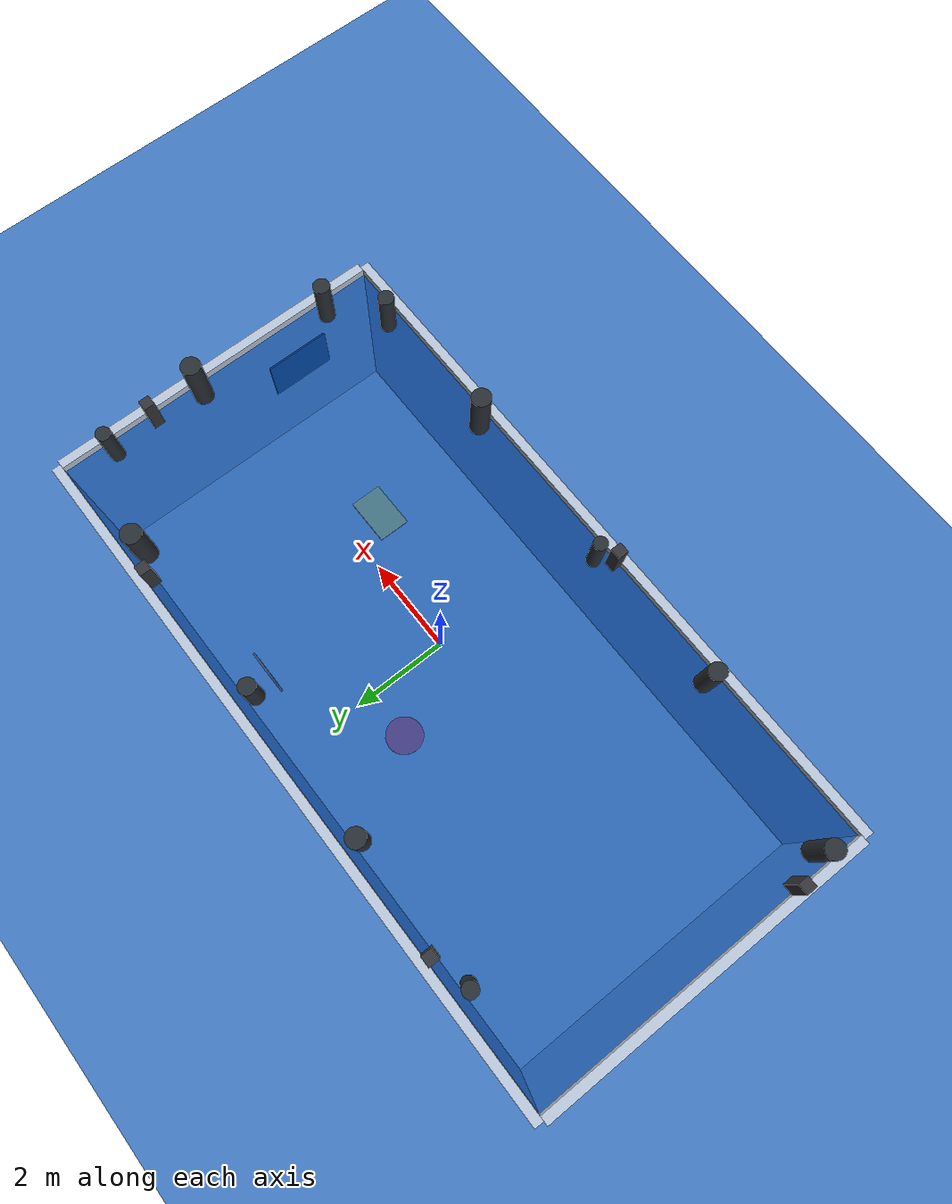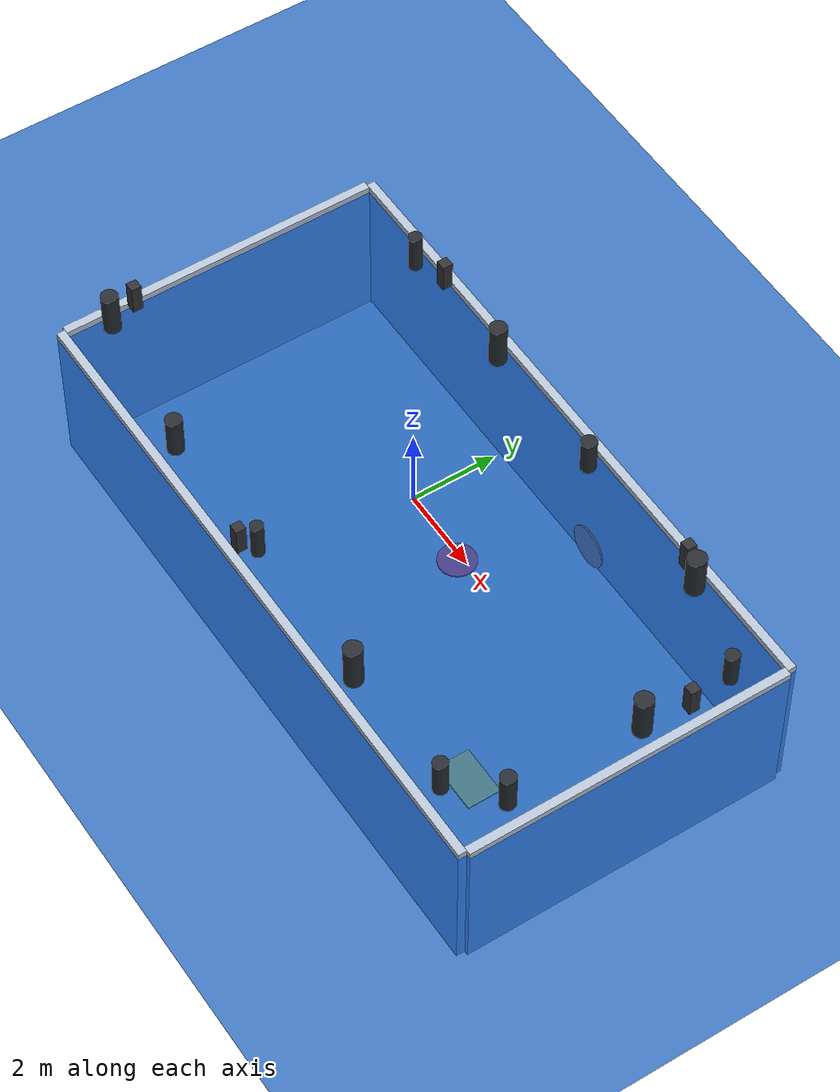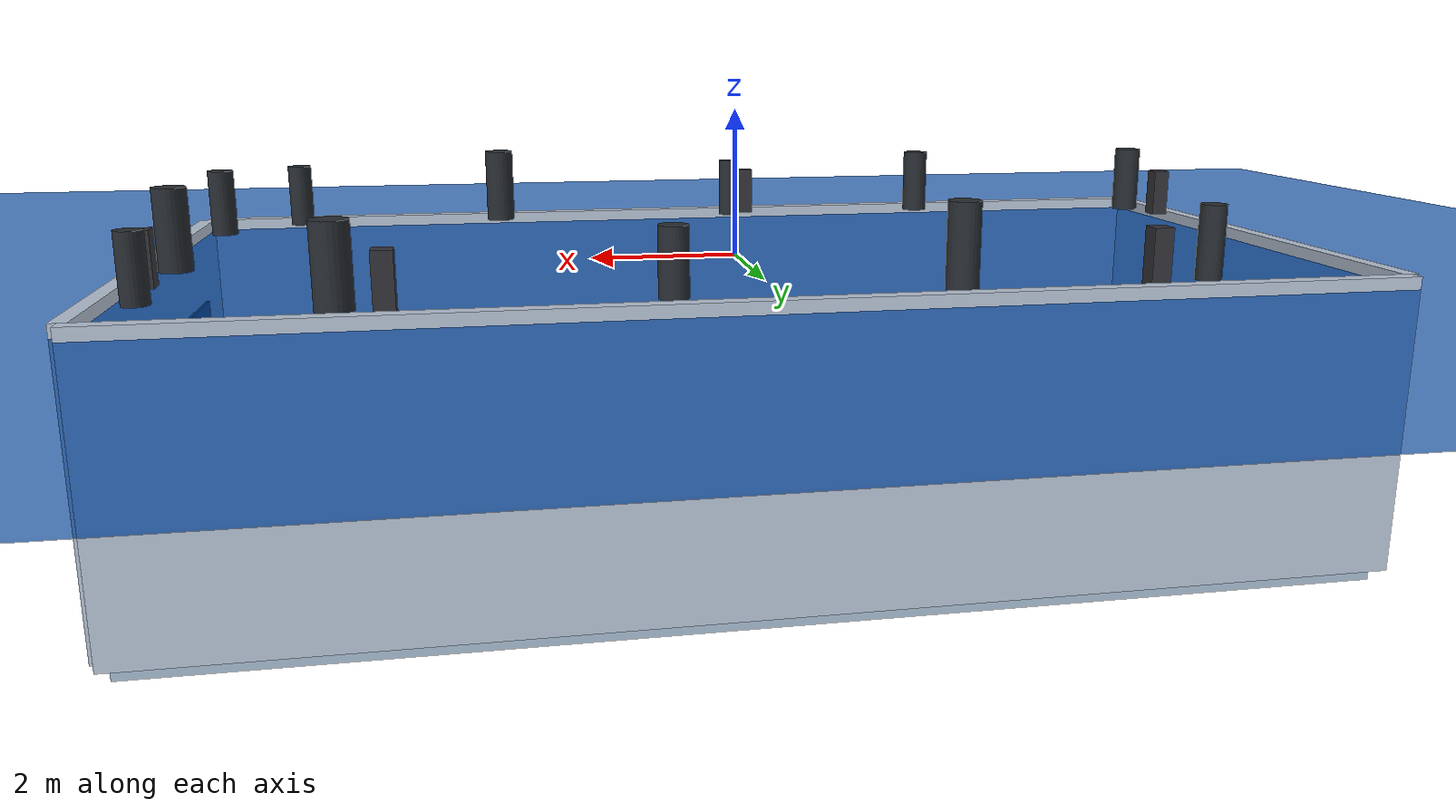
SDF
<?xml version="1.0" ?>
<sdf version="1.10">
  <world name="tank">
    <plugin filename="gz-sim-physics-system" name="gz::sim::systems::Physics"/>
    <plugin filename="gz-sim-user-commands-system" name="gz::sim::systems::UserCommands"/>
    <plugin filename="gz-sim-scene-broadcaster-system" name="gz::sim::systems::SceneBroadcaster"/>
    <plugin filename="gz-sim-sensors-system" name="gz::sim::systems::Sensors">
      <render_engine>ogre2</render_engine>
    </plugin>
    <plugin filename="gz-sim-imu-system" name="gz::sim::systems::Imu"/>
    <plugin filename="gz-sim-navsat-system" name="gz::sim::systems::NavSat"/>
    <plugin filename="gz-sim-magnetometer-system" name="gz::sim::systems::Magnetometer"/>

    <physics type="ignored">
      <max_step_size>0.004</max_step_size>
      <real_time_factor>1.0</real_time_factor>
      <real_time_update_rate>250</real_time_update_rate>
    </physics>

    <scene>
      <ambient>0.01 0.01 0.01 1.0</ambient>
      <background>0.70 0.84 0.95 1.0</background>
      <grid>false</grid>
      <sky>
        <clouds>
          <speed>12</speed>
        </clouds>
      </sky>
      <shadows>1</shadows>
    </scene>

    <!-- Global lights copied from open_water.world for consistent sim visibility. -->
    <light type="directional" name="sun1">
      <pose>50 0 150 0 0 0</pose>
      <diffuse>1 1 1 1</diffuse>
      <specular>.1 .1 .1 1</specular>
      <direction>0.3 0.3 -1</direction>
      <cast_shadows>false</cast_shadows>
    </light>

    <light type="directional" name="sun_diffuse">
      <pose>-50 0 -150 0 0 0</pose>
      <diffuse>0.6 0.6 0.6 1</diffuse>
      <specular>0 0 0 1</specular>
      <direction>-0.3 -0.3 -1</direction>
      <cast_shadows>false</cast_shadows>
    </light>

    <!-- Extra local fill light to keep the empty tank interior readable. -->
    <light type="point" name="tank_overhead_fill">
      <pose>0 0 8 0 0 0</pose>
      <diffuse>0.85 0.9 1.0 1</diffuse>
      <specular>0.15 0.15 0.15 1</specular>
      <attenuation>
        <range>30</range>
        <constant>0.6</constant>
        <linear>0.02</linear>
        <quadratic>0.002</quadratic>
      </attenuation>
      <cast_shadows>false</cast_shadows>
    </light>

    <include>
      <uri>model://tank</uri>
      <pose>-6.42 0 0 0 0 0</pose>
    </include>

    <!-- Generic visual water surface. Scenario semantics stay outside Gazebo model names. -->
    <include>
      <uri>model://water_surface</uri>
      <pose>0.0 0.0 0.0 0 0 0</pose>
    </include>

    <!-- Registration geometry is separate from inspection targets so each
         model has one simulator responsibility. -->
    <include>
      <uri>model://pool_registration_landmarks</uri>
      <pose>-6.42 0 0 0 0 0</pose>
    </include>

    <include>
      <uri>model://pool_inspection_targets</uri>
      <pose>-6.42 0 0 0 0 0</pose>
    </include>

  </world>
</sdf>

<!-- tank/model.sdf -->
<sdf version="1.6">
  <model name="tank">
    <static>true</static>
    <link name="tank_floor_link">
      <pose>6.42 0.0 -3.76 0 0 0</pose>
      <collision name="floor_collision">
        <geometry>
          <box>
            <size>15.24 7.62 0.2</size>
          </box>
        </geometry>
      </collision>
      <visual name="floor_visual">
        <geometry>
          <box>
            <size>15.24 7.62 0.2</size>
          </box>
        </geometry>
        <material>
          <ambient>0.58 0.66 0.74 1</ambient>
          <diffuse>0.66 0.74 0.82 1</diffuse>
        </material>
      </visual>
    </link>
    <link name="tank_wall_north_link">
      <pose>6.42 3.91 -1.755 0 0 0</pose>
      <collision name="wall_collision">
        <geometry>
          <box>
            <size>15.44 0.20 3.81</size>
          </box>
        </geometry>
      </collision>
      <visual name="wall_visual">
        <geometry>
          <box>
            <size>15.44 0.20 3.81</size>
          </box>
        </geometry>
        <material>
          <ambient>0.62 0.67 0.74 1</ambient>
          <diffuse>0.72 0.77 0.84 1</diffuse>
        </material>
      </visual>
    </link>
    <link name="tank_wall_south_link">
      <pose>6.42 -3.91 -1.755 0 0 0</pose>
      <collision name="wall_collision">
        <geometry>
          <box>
            <size>15.44 0.20 3.81</size>
          </box>
        </geometry>
      </collision>
      <visual name="wall_visual">
        <geometry>
          <box>
            <size>15.44 0.20 3.81</size>
          </box>
        </geometry>
        <material>
          <ambient>0.62 0.67 0.74 1</ambient>
          <diffuse>0.72 0.77 0.84 1</diffuse>
        </material>
      </visual>
    </link>
    <link name="tank_wall_east_link">
      <pose>14.14 0.0 -1.755 0 0 0</pose>
      <collision name="wall_collision">
        <geometry>
          <box>
            <size>0.20 7.62 3.81</size>
          </box>
        </geometry>
      </collision>
      <visual name="wall_visual">
        <geometry>
          <box>
            <size>0.20 7.62 3.81</size>
          </box>
        </geometry>
        <material>
          <ambient>0.62 0.67 0.74 1</ambient>
          <diffuse>0.72 0.77 0.84 1</diffuse>
        </material>
      </visual>
    </link>
    <link name="tank_wall_west_link">
      <pose>-1.30 0.0 -1.755 0 0 0</pose>
      <collision name="wall_collision">
        <geometry>
          <box>
            <size>0.20 7.62 3.81</size>
          </box>
        </geometry>
      </collision>
      <visual name="wall_visual">
        <geometry>
          <box>
            <size>0.20 7.62 3.81</size>
          </box>
        </geometry>
        <material>
          <ambient>0.62 0.67 0.74 1</ambient>
          <diffuse>0.72 0.77 0.84 1</diffuse>
        </material>
      </visual>
    </link>
  </model>
</sdf>

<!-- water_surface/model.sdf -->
<sdf version="1.6">
  <model name="water_surface">
    <static>true</static>

    <link name="water_surface_link">
      <visual name="water_surface_visual">
        <pose>0 0 -0.02 0 0 0</pose>
        <geometry>
          <box>
            <size>2000 2000 0.02</size>
          </box>
        </geometry>
        <material>
          <ambient>0.0 0.3 0.7 1.0</ambient>
          <diffuse>0.0 0.3 0.7 0.7</diffuse>
          <specular>0.1 0.1 0.1 1.0</specular>
        </material>
        <transparency>0.25</transparency>
      </visual>
    </link>
  </model>
</sdf>

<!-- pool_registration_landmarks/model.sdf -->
<sdf version="1.6">
  <model name="pool_registration_landmarks">
    <static>true</static>
    <link name="tank_lidar_reference_post_a_link">
      <pose>2.00 3.68 0.45 0 0 0</pose>
      <collision name="post_collision">
        <geometry>
          <box>
            <size>0.24 0.24 0.70</size>
          </box>
        </geometry>
      </collision>
      <visual name="post_visual">
        <geometry>
          <box>
            <size>0.24 0.24 0.70</size>
          </box>
        </geometry>
        <material>
          <ambient>0.18 0.18 0.20 1</ambient>
          <diffuse>0.20 0.20 0.22 1</diffuse>
        </material>
      </visual>
    </link>
    <link name="tank_lidar_reference_post_b_link">
      <pose>5.60 -3.68 0.45 0 0 0</pose>
      <collision name="post_collision">
        <geometry>
          <box>
            <size>0.24 0.24 0.70</size>
          </box>
        </geometry>
      </collision>
      <visual name="post_visual">
        <geometry>
          <box>
            <size>0.24 0.24 0.70</size>
          </box>
        </geometry>
        <material>
          <ambient>0.18 0.18 0.20 1</ambient>
          <diffuse>0.20 0.20 0.22 1</diffuse>
        </material>
      </visual>
    </link>
    <link name="tank_lidar_reference_post_c_link">
      <pose>10.90 3.68 0.45 0 0 0</pose>
      <collision name="post_collision">
        <geometry>
          <box>
            <size>0.24 0.24 0.70</size>
          </box>
        </geometry>
      </collision>
      <visual name="post_visual">
        <geometry>
          <box>
            <size>0.24 0.24 0.70</size>
          </box>
        </geometry>
        <material>
          <ambient>0.18 0.18 0.20 1</ambient>
          <diffuse>0.20 0.20 0.22 1</diffuse>
        </material>
      </visual>
    </link>
    <link name="tank_lidar_reference_post_d_link">
      <pose>13.78 1.70 0.45 0 0 0</pose>
      <collision name="post_collision">
        <geometry>
          <box>
            <size>0.24 0.24 0.70</size>
          </box>
        </geometry>
      </collision>
      <visual name="post_visual">
        <geometry>
          <box>
            <size>0.24 0.24 0.70</size>
          </box>
        </geometry>
        <material>
          <ambient>0.18 0.18 0.20 1</ambient>
          <diffuse>0.20 0.20 0.22 1</diffuse>
        </material>
      </visual>
    </link>
    <link name="tank_lidar_reference_post_e_link">
      <pose>-1.08 -2.20 0.45 0 0 0</pose>
      <collision name="post_collision">
        <geometry>
          <box>
            <size>0.24 0.24 0.70</size>
          </box>
        </geometry>
      </collision>
      <visual name="post_visual">
        <geometry>
          <box>
            <size>0.24 0.24 0.70</size>
          </box>
        </geometry>
        <material>
          <ambient>0.18 0.18 0.20 1</ambient>
          <diffuse>0.20 0.20 0.22 1</diffuse>
        </material>
      </visual>
    </link>
    <link name="tank_lidar_registration_landmarks_link">
      <collision name="north_pylon_1_collision">
        <pose>1.20 3.45 0.56 0 0 0</pose>
        <geometry>
          <cylinder>
            <radius>0.16</radius>
            <length>0.92</length>
          </cylinder>
        </geometry>
      </collision>
      <visual name="north_pylon_1_visual">
        <pose>1.20 3.45 0.56 0 0 0</pose>
        <geometry>
          <cylinder>
            <radius>0.16</radius>
            <length>0.92</length>
          </cylinder>
        </geometry>
        <material>
          <ambient>0.12 0.14 0.16 1</ambient>
          <diffuse>0.16 0.18 0.20 1</diffuse>
        </material>
      </visual>
      <collision name="north_pylon_2_collision">
        <pose>4.35 3.47 0.62 0 0 0</pose>
        <geometry>
          <cylinder>
            <radius>0.20</radius>
            <length>1.04</length>
          </cylinder>
        </geometry>
      </collision>
      <visual name="north_pylon_2_visual">
        <pose>4.35 3.47 0.62 0 0 0</pose>
        <geometry>
          <cylinder>
            <radius>0.20</radius>
            <length>1.04</length>
          </cylinder>
        </geometry>
        <material>
          <ambient>0.12 0.14 0.16 1</ambient>
          <diffuse>0.16 0.18 0.20 1</diffuse>
        </material>
      </visual>
      <collision name="north_pylon_3_collision">
        <pose>7.75 3.43 0.52 0 0 0</pose>
        <geometry>
          <cylinder>
            <radius>0.18</radius>
            <length>0.84</length>
          </cylinder>
        </geometry>
      </collision>
      <visual name="north_pylon_3_visual">
        <pose>7.75 3.43 0.52 0 0 0</pose>
        <geometry>
          <cylinder>
            <radius>0.18</radius>
            <length>0.84</length>
          </cylinder>
        </geometry>
        <material>
          <ambient>0.12 0.14 0.16 1</ambient>
          <diffuse>0.16 0.18 0.20 1</diffuse>
        </material>
      </visual>
      <collision name="north_pylon_4_collision">
        <pose>11.45 3.46 0.60 0 0 0</pose>
        <geometry>
          <cylinder>
            <radius>0.22</radius>
            <length>1.00</length>
          </cylinder>
        </geometry>
      </collision>
      <visual name="north_pylon_4_visual">
        <pose>11.45 3.46 0.60 0 0 0</pose>
        <geometry>
          <cylinder>
            <radius>0.22</radius>
            <length>1.00</length>
          </cylinder>
        </geometry>
        <material>
          <ambient>0.12 0.14 0.16 1</ambient>
          <diffuse>0.16 0.18 0.20 1</diffuse>
        </material>
      </visual>
      <collision name="south_pylon_1_collision">
        <pose>2.70 -3.45 0.58 0 0 0</pose>
        <geometry>
          <cylinder>
            <radius>0.19</radius>
            <length>0.96</length>
          </cylinder>
        </geometry>
      </collision>
      <visual name="south_pylon_1_visual">
        <pose>2.70 -3.45 0.58 0 0 0</pose>
        <geometry>
          <cylinder>
            <radius>0.19</radius>
            <length>0.96</length>
          </cylinder>
        </geometry>
        <material>
          <ambient>0.12 0.14 0.16 1</ambient>
          <diffuse>0.16 0.18 0.20 1</diffuse>
        </material>
      </visual>
      <collision name="south_pylon_2_collision">
        <pose>5.90 -3.42 0.54 0 0 0</pose>
        <geometry>
          <cylinder>
            <radius>0.15</radius>
            <length>0.88</length>
          </cylinder>
        </geometry>
      </collision>
      <visual name="south_pylon_2_visual">
        <pose>5.90 -3.42 0.54 0 0 0</pose>
        <geometry>
          <cylinder>
            <radius>0.15</radius>
            <length>0.88</length>
          </cylinder>
        </geometry>
        <material>
          <ambient>0.12 0.14 0.16 1</ambient>
          <diffuse>0.16 0.18 0.20 1</diffuse>
        </material>
      </visual>
      <collision name="south_pylon_3_collision">
        <pose>9.60 -3.48 0.64 0 0 0</pose>
        <geometry>
          <cylinder>
            <radius>0.21</radius>
            <length>1.08</length>
          </cylinder>
        </geometry>
      </collision>
      <visual name="south_pylon_3_visual">
        <pose>9.60 -3.48 0.64 0 0 0</pose>
        <geometry>
          <cylinder>
            <radius>0.21</radius>
            <length>1.08</length>
          </cylinder>
        </geometry>
        <material>
          <ambient>0.12 0.14 0.16 1</ambient>
          <diffuse>0.16 0.18 0.20 1</diffuse>
        </material>
      </visual>
      <collision name="south_pylon_4_collision">
        <pose>12.65 -3.44 0.55 0 0 0</pose>
        <geometry>
          <cylinder>
            <radius>0.17</radius>
            <length>0.90</length>
          </cylinder>
        </geometry>
      </collision>
      <visual name="south_pylon_4_visual">
        <pose>12.65 -3.44 0.55 0 0 0</pose>
        <geometry>
          <cylinder>
            <radius>0.17</radius>
            <length>0.90</length>
          </cylinder>
        </geometry>
        <material>
          <ambient>0.12 0.14 0.16 1</ambient>
          <diffuse>0.16 0.18 0.20 1</diffuse>
        </material>
      </visual>
      <collision name="east_pylon_1_collision">
        <pose>13.65 -2.55 0.57 0 0 0</pose>
        <geometry>
          <cylinder>
            <radius>0.18</radius>
            <length>0.94</length>
          </cylinder>
        </geometry>
      </collision>
      <visual name="east_pylon_1_visual">
        <pose>13.65 -2.55 0.57 0 0 0</pose>
        <geometry>
          <cylinder>
            <radius>0.18</radius>
            <length>0.94</length>
          </cylinder>
        </geometry>
        <material>
          <ambient>0.12 0.14 0.16 1</ambient>
          <diffuse>0.16 0.18 0.20 1</diffuse>
        </material>
      </visual>
      <collision name="east_pylon_2_collision">
        <pose>13.67 0.60 0.63 0 0 0</pose>
        <geometry>
          <cylinder>
            <radius>0.21</radius>
            <length>1.06</length>
          </cylinder>
        </geometry>
      </collision>
      <visual name="east_pylon_2_visual">
        <pose>13.67 0.60 0.63 0 0 0</pose>
        <geometry>
          <cylinder>
            <radius>0.21</radius>
            <length>1.06</length>
          </cylinder>
        </geometry>
        <material>
          <ambient>0.12 0.14 0.16 1</ambient>
          <diffuse>0.16 0.18 0.20 1</diffuse>
        </material>
      </visual>
      <collision name="east_pylon_3_collision">
        <pose>13.64 2.75 0.52 0 0 0</pose>
        <geometry>
          <cylinder>
            <radius>0.16</radius>
            <length>0.84</length>
          </cylinder>
        </geometry>
      </collision>
      <visual name="east_pylon_3_visual">
        <pose>13.64 2.75 0.52 0 0 0</pose>
        <geometry>
          <cylinder>
            <radius>0.16</radius>
            <length>0.84</length>
          </cylinder>
        </geometry>
        <material>
          <ambient>0.12 0.14 0.16 1</ambient>
          <diffuse>0.16 0.18 0.20 1</diffuse>
        </material>
      </visual>
      <collision name="west_pylon_1_collision">
        <pose>-0.86 -2.90 0.60 0 0 0</pose>
        <geometry>
          <cylinder>
            <radius>0.20</radius>
            <length>1.00</length>
          </cylinder>
        </geometry>
      </collision>
      <visual name="west_pylon_1_visual">
        <pose>-0.86 -2.90 0.60 0 0 0</pose>
        <geometry>
          <cylinder>
            <radius>0.20</radius>
            <length>1.00</length>
          </cylinder>
        </geometry>
        <material>
          <ambient>0.12 0.14 0.16 1</ambient>
          <diffuse>0.16 0.18 0.20 1</diffuse>
        </material>
      </visual>
    </link>
  </model>
</sdf>

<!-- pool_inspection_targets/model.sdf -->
<sdf version="1.6">
  <model name="pool_inspection_targets">
    <static>true</static>
    <link name="floor_circle_mid_tank_link">
      <pose>6.00 1.40 -3.645 0 0 0</pose>
      <collision name="target_collision">
        <geometry>
          <cylinder>
            <radius>0.45</radius>
            <length>0.03</length>
          </cylinder>
        </geometry>
      </collision>
      <visual name="target_visual">
        <geometry>
          <cylinder>
            <radius>0.45</radius>
            <length>0.03</length>
          </cylinder>
        </geometry>
        <material>
          <ambient>0.88 0.12 0.12 1</ambient>
          <diffuse>0.98 0.18 0.18 1</diffuse>
        </material>
      </visual>
    </link>
    <link name="floor_rect_far_tank_link">
      <pose>10.80 -1.50 -3.645 0 0 0</pose>
      <collision name="target_collision">
        <geometry>
          <box>
            <size>1.20 0.80 0.03</size>
          </box>
        </geometry>
      </collision>
      <visual name="target_visual">
        <geometry>
          <box>
            <size>1.20 0.80 0.03</size>
          </box>
        </geometry>
        <material>
          <ambient>0.96 0.86 0.12 1</ambient>
          <diffuse>0.98 0.90 0.18 1</diffuse>
        </material>
      </visual>
    </link>
    <link name="wall_rect_far_east_link">
      <pose>13.99 -1.80 -1.40 0 0 0</pose>
      <collision name="target_collision">
        <geometry>
          <box>
            <size>0.04 1.50 1.00</size>
          </box>
        </geometry>
      </collision>
      <visual name="target_visual">
        <geometry>
          <box>
            <size>0.04 1.50 1.00</size>
          </box>
        </geometry>
        <material>
          <ambient>0.12 0.12 0.12 1</ambient>
          <diffuse>0.08 0.08 0.08 1</diffuse>
          <specular>0.02 0.02 0.02 1</specular>
        </material>
      </visual>
    </link>
    <link name="wall_circle_north_link">
      <pose>8.50 3.00 -1.50 1.570796 0 0</pose>
      <collision name="target_collision">
        <geometry>
          <cylinder>
            <radius>0.50</radius>
            <length>0.04</length>
          </cylinder>
        </geometry>
      </collision>
      <visual name="target_visual">
        <geometry>
          <cylinder>
            <radius>0.50</radius>
            <length>0.04</length>
          </cylinder>
        </geometry>
        <material>
          <ambient>0.95 0.45 0.10 1</ambient>
          <diffuse>0.98 0.52 0.14 1</diffuse>
        </material>
      </visual>
    </link>
  </model>
</sdf>
